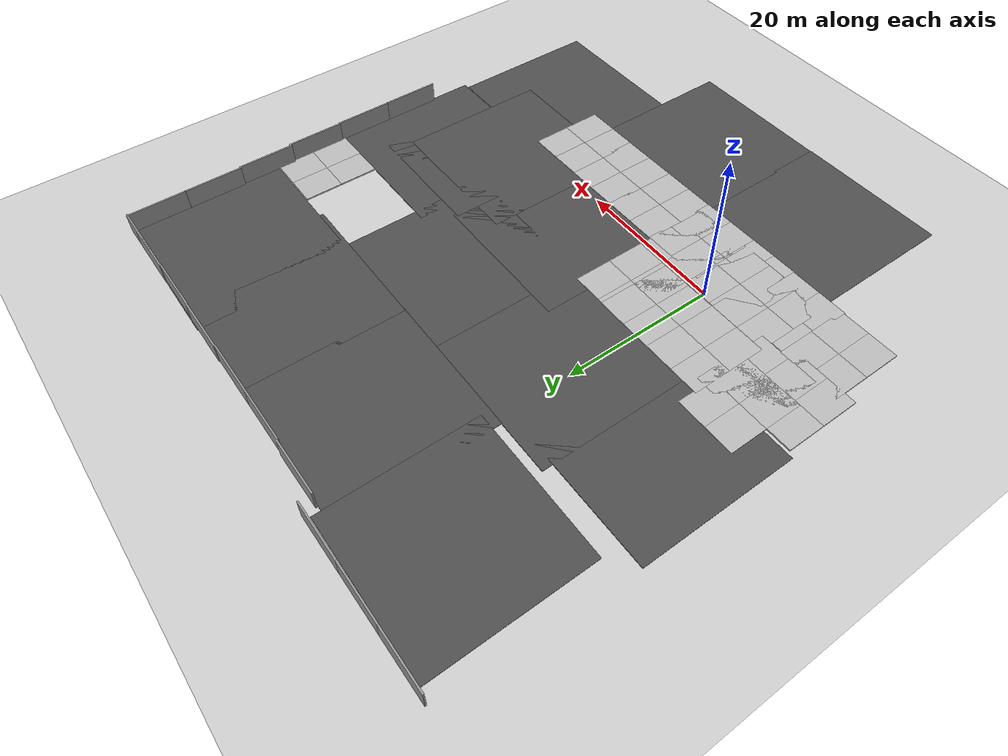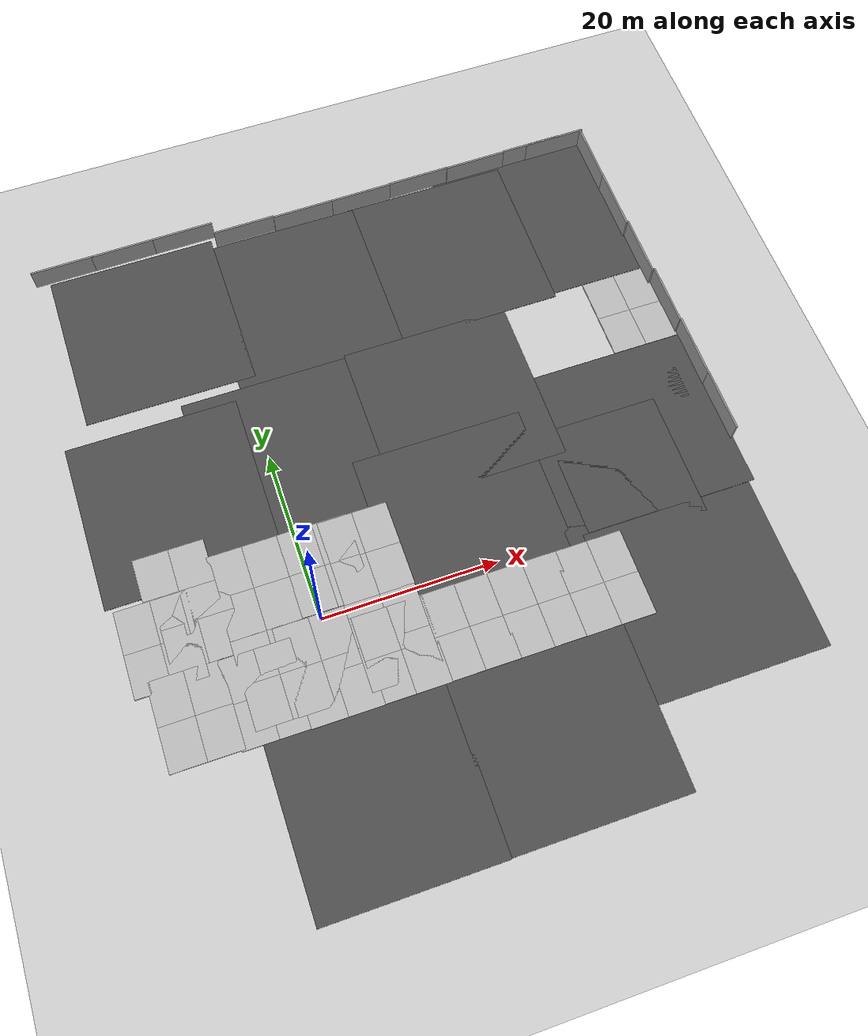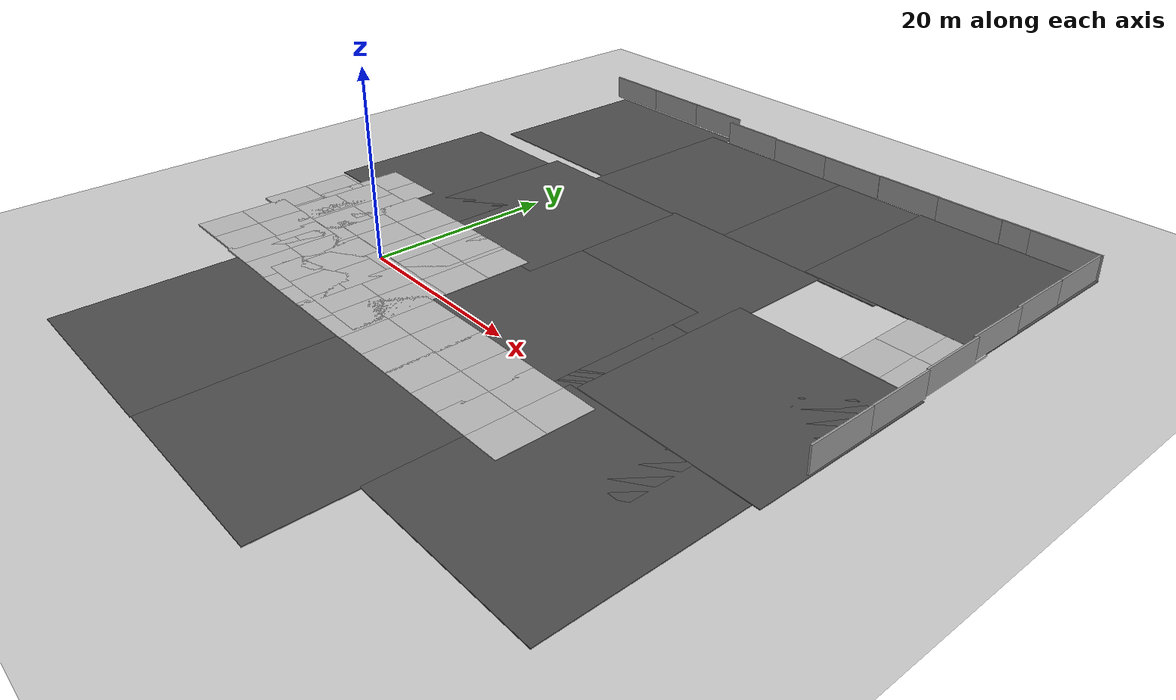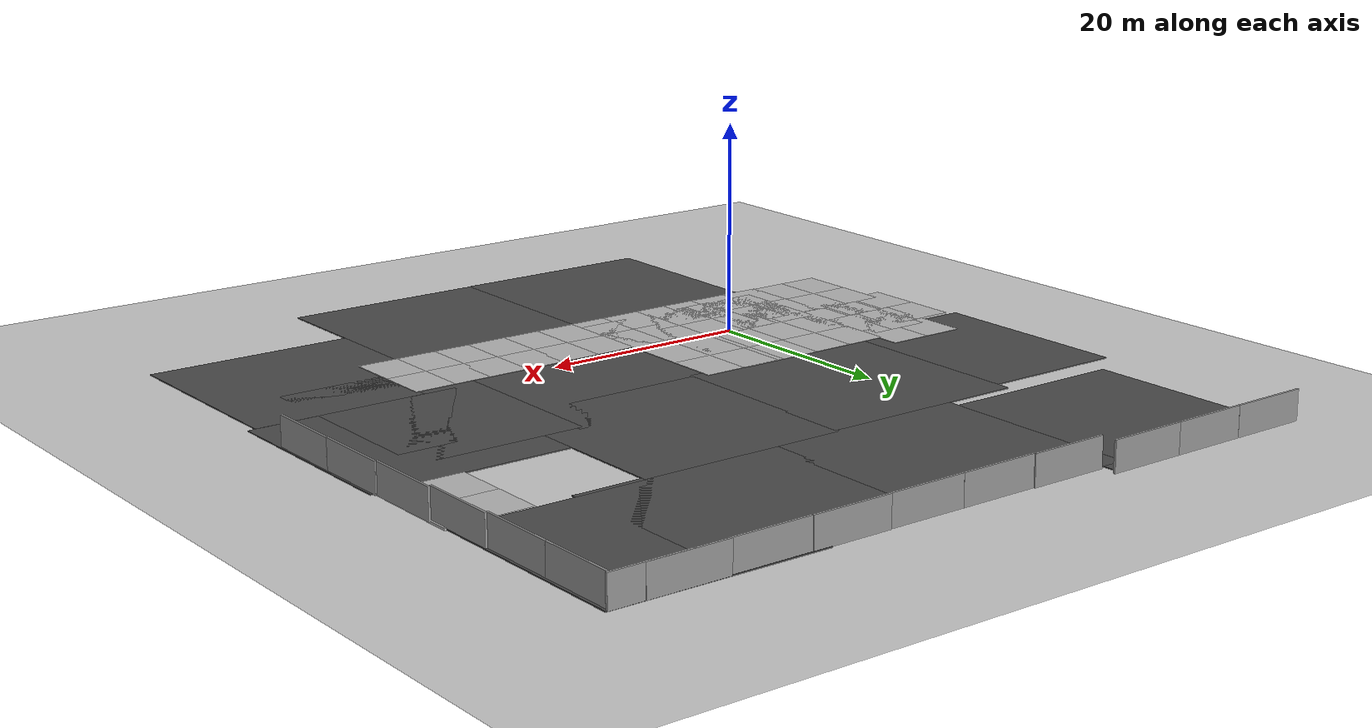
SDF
<sdf version="1.6">
 <world name="default">
  <model name="ground_plane">
   <static>1</static>
   <link name="link">
    <collision name="collision">
     <geometry><plane><normal>0 0 1</normal><size>100 100</size></plane></geometry>
     <surface><friction><ode><mu>100</mu><mu2>50</mu2></ode></friction></surface>
    </collision>
    <visual name="visual">
     <cast_shadows>0</cast_shadows>
     <geometry><plane><normal>0 0 1</normal><size>100 100</size></plane></geometry>
     <material>
      <script><uri>file://media/materials/scripts/gazebo.material</uri><name>Gazebo/Grey</name></script>
     </material>
    </visual>
   </link>
  </model>
  <model name="mud_box">
   <static>1</static>
   <link name="link">
    <collision name="collision"><geometry><box><size>8 10 0.2</size></box></geometry></collision>
    <visual name="visual_1">
     <pose>-2 2.5 0 0 -0 0</pose>
     <cast_shadows>0</cast_shadows>
     <geometry><box><size>4 5 0.2</size></box></geometry>
     <material>
      <script>
       <uri>model://mud_box/materials/scripts</uri>
       <uri>model://mud_box/materials/textures</uri>
       <name>vrc/mud</name>
      </script>
     </material>
    </visual>
    <visual name="visual_2">
     <pose>2 2.5 0 0 -0 0</pose>
     <cast_shadows>0</cast_shadows>
     <geometry><box><size>4 5 0.2</size></box></geometry>
     <material>
      <script>
       <uri>model://mud_box/materials/scripts</uri>
       <uri>model://mud_box/materials/textures</uri>
       <name>vrc/mud</name>
      </script>
     </material>
    </visual>
    <visual name="visual_3">
     <pose>2 -2.5 0 0 -0 0</pose>
     <cast_shadows>0</cast_shadows>
     <geometry><box><size>4 5 0.2</size></box></geometry>
     <material>
      <script>
       <uri>model://mud_box/materials/scripts</uri>
       <uri>model://mud_box/materials/textures</uri>
       <name>vrc/mud</name>
      </script>
     </material>
    </visual>
    <visual name="visual_4">
     <pose>-2 -2.5 0 0 -0 0</pose>
     <cast_shadows>0</cast_shadows>
     <geometry><box><size>4 5 0.2</size></box></geometry>
     <material>
      <script>
       <uri>model://mud_box/materials/scripts</uri>
       <uri>model://mud_box/materials/textures</uri>
       <name>vrc/mud</name>
      </script>
     </material>
    </visual>
   </link>
   <pose>6.67494 -4.37805 0 0 -0 0</pose>
  </model>
  <model name="mud_box_0">
   <static>1</static>
   <link name="link">
    <collision name="collision"><geometry><box><size>8 10 0.2</size></box></geometry></collision>
    <visual name="visual_1">
     <pose>-2 2.5 0 0 -0 0</pose>
     <cast_shadows>0</cast_shadows>
     <geometry><box><size>4 5 0.2</size></box></geometry>
     <material>
      <script>
       <uri>model://mud_box/materials/scripts</uri>
       <uri>model://mud_box/materials/textures</uri>
       <name>vrc/mud</name>
      </script>
     </material>
    </visual>
    <visual name="visual_2">
     <pose>2 2.5 0 0 -0 0</pose>
     <cast_shadows>0</cast_shadows>
     <geometry><box><size>4 5 0.2</size></box></geometry>
     <material>
      <script>
       <uri>model://mud_box/materials/scripts</uri>
       <uri>model://mud_box/materials/textures</uri>
       <name>vrc/mud</name>
      </script>
     </material>
    </visual>
    <visual name="visual_3">
     <pose>2 -2.5 0 0 -0 0</pose>
     <cast_shadows>0</cast_shadows>
     <geometry><box><size>4 5 0.2</size></box></geometry>
     <material>
      <script>
       <uri>model://mud_box/materials/scripts</uri>
       <uri>model://mud_box/materials/textures</uri>
       <name>vrc/mud</name>
      </script>
     </material>
    </visual>
    <visual name="visual_4">
     <pose>-2 -2.5 0 0 -0 0</pose>
     <cast_shadows>0</cast_shadows>
     <geometry><box><size>4 5 0.2</size></box></geometry>
     <material>
      <script>
       <uri>model://mud_box/materials/scripts</uri>
       <uri>model://mud_box/materials/textures</uri>
       <name>vrc/mud</name>
      </script>
     </material>
    </visual>
   </link>
   <pose>-1.31413 -4.41998 0 0 -0 0</pose>
  </model>
  <model name="mud_box_1">
   <static>1</static>
   <link name="link">
    <collision name="collision"><geometry><box><size>8 10 0.2</size></box></geometry></collision>
    <visual name="visual_1">
     <pose>-2 2.5 0 0 -0 0</pose>
     <cast_shadows>0</cast_shadows>
     <geometry><box><size>4 5 0.2</size></box></geometry>
     <material>
      <script>
       <uri>model://mud_box/materials/scripts</uri>
       <uri>model://mud_box/materials/textures</uri>
       <name>vrc/mud</name>
      </script>
     </material>
    </visual>
    <visual name="visual_2">
     <pose>2 2.5 0 0 -0 0</pose>
     <cast_shadows>0</cast_shadows>
     <geometry><box><size>4 5 0.2</size></box></geometry>
     <material>
      <script>
       <uri>model://mud_box/materials/scripts</uri>
       <uri>model://mud_box/materials/textures</uri>
       <name>vrc/mud</name>
      </script>
     </material>
    </visual>
    <visual name="visual_3">
     <pose>2 -2.5 0 0 -0 0</pose>
     <cast_shadows>0</cast_shadows>
     <geometry><box><size>4 5 0.2</size></box></geometry>
     <material>
      <script>
       <uri>model://mud_box/materials/scripts</uri>
       <uri>model://mud_box/materials/textures</uri>
       <name>vrc/mud</name>
      </script>
     </material>
    </visual>
    <visual name="visual_4">
     <pose>-2 -2.5 0 0 -0 0</pose>
     <cast_shadows>0</cast_shadows>
     <geometry><box><size>4 5 0.2</size></box></geometry>
     <material>
      <script>
       <uri>model://mud_box/materials/scripts</uri>
       <uri>model://mud_box/materials/textures</uri>
       <name>vrc/mud</name>
      </script>
     </material>
    </visual>
   </link>
   <pose>-5.88435 -4.38735 0 0 -0 0</pose>
  </model>
  <model name="mud_box_2">
   <static>1</static>
   <link name="link">
    <collision name="collision"><geometry><box><size>8 10 0.2</size></box></geometry></collision>
    <visual name="visual_1">
     <pose>-2 2.5 0 0 -0 0</pose>
     <cast_shadows>0</cast_shadows>
     <geometry><box><size>4 5 0.2</size></box></geometry>
     <material>
      <script>
       <uri>model://mud_box/materials/scripts</uri>
       <uri>model://mud_box/materials/textures</uri>
       <name>vrc/mud</name>
      </script>
     </material>
    </visual>
    <visual name="visual_2">
     <pose>2 2.5 0 0 -0 0</pose>
     <cast_shadows>0</cast_shadows>
     <geometry><box><size>4 5 0.2</size></box></geometry>
     <material>
      <script>
       <uri>model://mud_box/materials/scripts</uri>
       <uri>model://mud_box/materials/textures</uri>
       <name>vrc/mud</name>
      </script>
     </material>
    </visual>
    <visual name="visual_3">
     <pose>2 -2.5 0 0 -0 0</pose>
     <cast_shadows>0</cast_shadows>
     <geometry><box><size>4 5 0.2</size></box></geometry>
     <material>
      <script>
       <uri>model://mud_box/materials/scripts</uri>
       <uri>model://mud_box/materials/textures</uri>
       <name>vrc/mud</name>
      </script>
     </material>
    </visual>
    <visual name="visual_4">
     <pose>-2 -2.5 0 0 -0 0</pose>
     <cast_shadows>0</cast_shadows>
     <geometry><box><size>4 5 0.2</size></box></geometry>
     <material>
      <script>
       <uri>model://mud_box/materials/scripts</uri>
       <uri>model://mud_box/materials/textures</uri>
       <name>vrc/mud</name>
      </script>
     </material>
    </visual>
   </link>
   <pose>-5.85929 5.62111 0 0 -0 0</pose>
  </model>
  <model name="mud_box_3">
   <static>1</static>
   <link name="link">
    <collision name="collision"><geometry><box><size>8 10 0.2</size></box></geometry></collision>
    <visual name="visual_1">
     <pose>-2 2.5 0 0 -0 0</pose>
     <cast_shadows>0</cast_shadows>
     <geometry><box><size>4 5 0.2</size></box></geometry>
     <material>
      <script>
       <uri>model://mud_box/materials/scripts</uri>
       <uri>model://mud_box/materials/textures</uri>
       <name>vrc/mud</name>
      </script>
     </material>
    </visual>
    <visual name="visual_2">
     <pose>2 2.5 0 0 -0 0</pose>
     <cast_shadows>0</cast_shadows>
     <geometry><box><size>4 5 0.2</size></box></geometry>
     <material>
      <script>
       <uri>model://mud_box/materials/scripts</uri>
       <uri>model://mud_box/materials/textures</uri>
       <name>vrc/mud</name>
      </script>
     </material>
    </visual>
    <visual name="visual_3">
     <pose>2 -2.5 0 0 -0 0</pose>
     <cast_shadows>0</cast_shadows>
     <geometry><box><size>4 5 0.2</size></box></geometry>
     <material>
      <script>
       <uri>model://mud_box/materials/scripts</uri>
       <uri>model://mud_box/materials/textures</uri>
       <name>vrc/mud</name>
      </script>
     </material>
    </visual>
    <visual name="visual_4">
     <pose>-2 -2.5 0 0 -0 0</pose>
     <cast_shadows>0</cast_shadows>
     <geometry><box><size>4 5 0.2</size></box></geometry>
     <material>
      <script>
       <uri>model://mud_box/materials/scripts</uri>
       <uri>model://mud_box/materials/textures</uri>
       <name>vrc/mud</name>
      </script>
     </material>
    </visual>
   </link>
   <pose>2.11138 5.6492 0 0 -0 0</pose>
  </model>
  <model name="mud_box_4">
   <static>1</static>
   <link name="link">
    <collision name="collision"><geometry><box><size>8 10 0.2</size></box></geometry></collision>
    <visual name="visual_1">
     <pose>-2 2.5 0 0 -0 0</pose>
     <cast_shadows>0</cast_shadows>
     <geometry><box><size>4 5 0.2</size></box></geometry>
     <material>
      <script>
       <uri>model://mud_box/materials/scripts</uri>
       <uri>model://mud_box/materials/textures</uri>
       <name>vrc/mud</name>
      </script>
     </material>
    </visual>
    <visual name="visual_2">
     <pose>2 2.5 0 0 -0 0</pose>
     <cast_shadows>0</cast_shadows>
     <geometry><box><size>4 5 0.2</size></box></geometry>
     <material>
      <script>
       <uri>model://mud_box/materials/scripts</uri>
       <uri>model://mud_box/materials/textures</uri>
       <name>vrc/mud</name>
      </script>
     </material>
    </visual>
    <visual name="visual_3">
     <pose>2 -2.5 0 0 -0 0</pose>
     <cast_shadows>0</cast_shadows>
     <geometry><box><size>4 5 0.2</size></box></geometry>
     <material>
      <script>
       <uri>model://mud_box/materials/scripts</uri>
       <uri>model://mud_box/materials/textures</uri>
       <name>vrc/mud</name>
      </script>
     </material>
    </visual>
    <visual name="visual_4">
     <pose>-2 -2.5 0 0 -0 0</pose>
     <cast_shadows>0</cast_shadows>
     <geometry><box><size>4 5 0.2</size></box></geometry>
     <material>
      <script>
       <uri>model://mud_box/materials/scripts</uri>
       <uri>model://mud_box/materials/textures</uri>
       <name>vrc/mud</name>
      </script>
     </material>
    </visual>
   </link>
   <pose>6.7262 5.5782 0 0 -0 0</pose>
  </model>
  <model name="asphalt_plane">
   <static>1</static>
   <link name="link">
    <collision name="collision"><geometry><box><size>20 20 0.1</size></box></geometry></collision>
    <visual name="visual">
     <cast_shadows>0</cast_shadows>
     <geometry><box><size>20 20 0.1</size></box></geometry>
     <material>
      <script>
       <uri>model://asphalt_plane/materials/scripts</uri>
       <uri>model://asphalt_plane/materials/textures</uri>
       <name>vrc/asphalt</name>
      </script>
     </material>
    </visual>
   </link>
   <pose>0.46329 -19.4958 0 0 -0 0</pose>
  </model>
  <model name="asphalt_plane_1">
   <static>1</static>
   <link name="link">
    <collision name="collision"><geometry><box><size>20 20 0.1</size></box></geometry></collision>
    <visual name="visual">
     <cast_shadows>0</cast_shadows>
     <geometry><box><size>20 20 0.1</size></box></geometry>
     <material>
      <script>
       <uri>model://asphalt_plane/materials/scripts</uri>
       <uri>model://asphalt_plane/materials/textures</uri>
       <name>vrc/asphalt</name>
      </script>
     </material>
    </visual>
   </link>
   <pose>20.1586 -19.4171 0 0 -0 0</pose>
  </model>
  <model name="mud_box_2_clone_9">
   <static>1</static>
   <link name="link">
    <collision name="collision"><geometry><box><size>8 10 0.2</size></box></geometry></collision>
    <visual name="visual_1">
     <pose>-2 2.5 0 0 -0 0</pose>
     <cast_shadows>0</cast_shadows>
     <geometry><box><size>4 5 0.2</size></box></geometry>
     <material>
      <script>
       <uri>model://mud_box/materials/scripts</uri>
       <uri>model://mud_box/materials/textures</uri>
       <name>vrc/mud</name>
      </script>
     </material>
    </visual>
    <visual name="visual_2">
     <pose>2 2.5 0 0 -0 0</pose>
     <cast_shadows>0</cast_shadows>
     <geometry><box><size>4 5 0.2</size></box></geometry>
     <material>
      <script>
       <uri>model://mud_box/materials/scripts</uri>
       <uri>model://mud_box/materials/textures</uri>
       <name>vrc/mud</name>
      </script>
     </material>
    </visual>
    <visual name="visual_3">
     <pose>2 -2.5 0 0 -0 0</pose>
     <cast_shadows>0</cast_shadows>
     <geometry><box><size>4 5 0.2</size></box></geometry>
     <material>
      <script>
       <uri>model://mud_box/materials/scripts</uri>
       <uri>model://mud_box/materials/textures</uri>
       <name>vrc/mud</name>
      </script>
     </material>
    </visual>
    <visual name="visual_4">
     <pose>-2 -2.5 0 0 -0 0</pose>
     <cast_shadows>0</cast_shadows>
     <geometry><box><size>4 5 0.2</size></box></geometry>
     <material>
      <script>
       <uri>model://mud_box/materials/scripts</uri>
       <uri>model://mud_box/materials/textures</uri>
       <name>vrc/mud</name>
      </script>
     </material>
    </visual>
   </link>
   <pose>6.94055 -5.96852 0 0 -0 0</pose>
  </model>
  <model name="mud_box_2_clone_10">
   <static>1</static>
   <link name="link">
    <collision name="collision"><geometry><box><size>8 10 0.2</size></box></geometry></collision>
    <visual name="visual_1">
     <pose>-2 2.5 0 0 -0 0</pose>
     <cast_shadows>0</cast_shadows>
     <geometry><box><size>4 5 0.2</size></box></geometry>
     <material>
      <script>
       <uri>model://mud_box/materials/scripts</uri>
       <uri>model://mud_box/materials/textures</uri>
       <name>vrc/mud</name>
      </script>
     </material>
    </visual>
    <visual name="visual_2">
     <pose>2 2.5 0 0 -0 0</pose>
     <cast_shadows>0</cast_shadows>
     <geometry><box><size>4 5 0.2</size></box></geometry>
     <material>
      <script>
       <uri>model://mud_box/materials/scripts</uri>
       <uri>model://mud_box/materials/textures</uri>
       <name>vrc/mud</name>
      </script>
     </material>
    </visual>
    <visual name="visual_3">
     <pose>2 -2.5 0 0 -0 0</pose>
     <cast_shadows>0</cast_shadows>
     <geometry><box><size>4 5 0.2</size></box></geometry>
     <material>
      <script>
       <uri>model://mud_box/materials/scripts</uri>
       <uri>model://mud_box/materials/textures</uri>
       <name>vrc/mud</name>
      </script>
     </material>
    </visual>
    <visual name="visual_4">
     <pose>-2 -2.5 0 0 -0 0</pose>
     <cast_shadows>0</cast_shadows>
     <geometry><box><size>4 5 0.2</size></box></geometry>
     <material>
      <script>
       <uri>model://mud_box/materials/scripts</uri>
       <uri>model://mud_box/materials/textures</uri>
       <name>vrc/mud</name>
      </script>
     </material>
    </visual>
   </link>
   <pose>-0.426662 -6.00251 0 0 -0 0</pose>
  </model>
  <model name="mud_box_2_clone_11">
   <static>1</static>
   <link name="link">
    <collision name="collision"><geometry><box><size>8 10 0.2</size></box></geometry></collision>
    <visual name="visual_1">
     <pose>-2 2.5 0 0 -0 0</pose>
     <cast_shadows>0</cast_shadows>
     <geometry><box><size>4 5 0.2</size></box></geometry>
     <material>
      <script>
       <uri>model://mud_box/materials/scripts</uri>
       <uri>model://mud_box/materials/textures</uri>
       <name>vrc/mud</name>
      </script>
     </material>
    </visual>
    <visual name="visual_2">
     <pose>2 2.5 0 0 -0 0</pose>
     <cast_shadows>0</cast_shadows>
     <geometry><box><size>4 5 0.2</size></box></geometry>
     <material>
      <script>
       <uri>model://mud_box/materials/scripts</uri>
       <uri>model://mud_box/materials/textures</uri>
       <name>vrc/mud</name>
      </script>
     </material>
    </visual>
    <visual name="visual_3">
     <pose>2 -2.5 0 0 -0 0</pose>
     <cast_shadows>0</cast_shadows>
     <geometry><box><size>4 5 0.2</size></box></geometry>
     <material>
      <script>
       <uri>model://mud_box/materials/scripts</uri>
       <uri>model://mud_box/materials/textures</uri>
       <name>vrc/mud</name>
      </script>
     </material>
    </visual>
    <visual name="visual_4">
     <pose>-2 -2.5 0 0 -0 0</pose>
     <cast_shadows>0</cast_shadows>
     <geometry><box><size>4 5 0.2</size></box></geometry>
     <material>
      <script>
       <uri>model://mud_box/materials/scripts</uri>
       <uri>model://mud_box/materials/textures</uri>
       <name>vrc/mud</name>
      </script>
     </material>
    </visual>
   </link>
   <pose>-7.76973 -5.92616 0 0 -0 0</pose>
  </model>
  <model name="mud_box_2_clone_12">
   <static>1</static>
   <link name="link">
    <collision name="collision"><geometry><box><size>8 10 0.2</size></box></geometry></collision>
    <visual name="visual_1">
     <pose>-2 2.5 0 0 -0 0</pose>
     <cast_shadows>0</cast_shadows>
     <geometry><box><size>4 5 0.2</size></box></geometry>
     <material>
      <script>
       <uri>model://mud_box/materials/scripts</uri>
       <uri>model://mud_box/materials/textures</uri>
       <name>vrc/mud</name>
      </script>
     </material>
    </visual>
    <visual name="visual_2">
     <pose>2 2.5 0 0 -0 0</pose>
     <cast_shadows>0</cast_shadows>
     <geometry><box><size>4 5 0.2</size></box></geometry>
     <material>
      <script>
       <uri>model://mud_box/materials/scripts</uri>
       <uri>model://mud_box/materials/textures</uri>
       <name>vrc/mud</name>
      </script>
     </material>
    </visual>
    <visual name="visual_3">
     <pose>2 -2.5 0 0 -0 0</pose>
     <cast_shadows>0</cast_shadows>
     <geometry><box><size>4 5 0.2</size></box></geometry>
     <material>
      <script>
       <uri>model://mud_box/materials/scripts</uri>
       <uri>model://mud_box/materials/textures</uri>
       <name>vrc/mud</name>
      </script>
     </material>
    </visual>
    <visual name="visual_4">
     <pose>-2 -2.5 0 0 -0 0</pose>
     <cast_shadows>0</cast_shadows>
     <geometry><box><size>4 5 0.2</size></box></geometry>
     <material>
      <script>
       <uri>model://mud_box/materials/scripts</uri>
       <uri>model://mud_box/materials/textures</uri>
       <name>vrc/mud</name>
      </script>
     </material>
    </visual>
   </link>
   <pose>14.6148 -5.9147 0 0 -0 0</pose>
  </model>
  <model name="mud_box_2_clone_13">
   <static>1</static>
   <link name="link">
    <collision name="collision"><geometry><box><size>8 10 0.2</size></box></geometry></collision>
    <visual name="visual_1">
     <pose>-2 2.5 0 0 -0 0</pose>
     <cast_shadows>0</cast_shadows>
     <geometry><box><size>4 5 0.2</size></box></geometry>
     <material>
      <script>
       <uri>model://mud_box/materials/scripts</uri>
       <uri>model://mud_box/materials/textures</uri>
       <name>vrc/mud</name>
      </script>
     </material>
    </visual>
    <visual name="visual_2">
     <pose>2 2.5 0 0 -0 0</pose>
     <cast_shadows>0</cast_shadows>
     <geometry><box><size>4 5 0.2</size></box></geometry>
     <material>
      <script>
       <uri>model://mud_box/materials/scripts</uri>
       <uri>model://mud_box/materials/textures</uri>
       <name>vrc/mud</name>
      </script>
     </material>
    </visual>
    <visual name="visual_3">
     <pose>2 -2.5 0 0 -0 0</pose>
     <cast_shadows>0</cast_shadows>
     <geometry><box><size>4 5 0.2</size></box></geometry>
     <material>
      <script>
       <uri>model://mud_box/materials/scripts</uri>
       <uri>model://mud_box/materials/textures</uri>
       <name>vrc/mud</name>
      </script>
     </material>
    </visual>
    <visual name="visual_4">
     <pose>-2 -2.5 0 0 -0 0</pose>
     <cast_shadows>0</cast_shadows>
     <geometry><box><size>4 5 0.2</size></box></geometry>
     <material>
      <script>
       <uri>model://mud_box/materials/scripts</uri>
       <uri>model://mud_box/materials/textures</uri>
       <name>vrc/mud</name>
      </script>
     </material>
    </visual>
   </link>
   <pose>22.3759 -5.90953 0 0 -0 0</pose>
  </model>
  <model name="mud_box_2_clone_14">
   <static>1</static>
   <link name="link">
    <collision name="collision"><geometry><box><size>8 10 0.2</size></box></geometry></collision>
    <visual name="visual_1">
     <pose>-2 2.5 0 0 -0 0</pose>
     <cast_shadows>0</cast_shadows>
     <geometry><box><size>4 5 0.2</size></box></geometry>
     <material>
      <script>
       <uri>model://mud_box/materials/scripts</uri>
       <uri>model://mud_box/materials/textures</uri>
       <name>vrc/mud</name>
      </script>
     </material>
    </visual>
    <visual name="visual_2">
     <pose>2 2.5 0 0 -0 0</pose>
     <cast_shadows>0</cast_shadows>
     <geometry><box><size>4 5 0.2</size></box></geometry>
     <material>
      <script>
       <uri>model://mud_box/materials/scripts</uri>
       <uri>model://mud_box/materials/textures</uri>
       <name>vrc/mud</name>
      </script>
     </material>
    </visual>
    <visual name="visual_3">
     <pose>2 -2.5 0 0 -0 0</pose>
     <cast_shadows>0</cast_shadows>
     <geometry><box><size>4 5 0.2</size></box></geometry>
     <material>
      <script>
       <uri>model://mud_box/materials/scripts</uri>
       <uri>model://mud_box/materials/textures</uri>
       <name>vrc/mud</name>
      </script>
     </material>
    </visual>
    <visual name="visual_4">
     <pose>-2 -2.5 0 0 -0 0</pose>
     <cast_shadows>0</cast_shadows>
     <geometry><box><size>4 5 0.2</size></box></geometry>
     <material>
      <script>
       <uri>model://mud_box/materials/scripts</uri>
       <uri>model://mud_box/materials/textures</uri>
       <name>vrc/mud</name>
      </script>
     </material>
    </visual>
   </link>
   <pose>29.9864 -5.92338 0 0 -0 0</pose>
  </model>
  <model name="mud_box_2_clone_15">
   <static>1</static>
   <link name="link">
    <collision name="collision"><geometry><box><size>8 10 0.2</size></box></geometry></collision>
    <visual name="visual_1">
     <pose>-2 2.5 0 0 -0 0</pose>
     <cast_shadows>0</cast_shadows>
     <geometry><box><size>4 5 0.2</size></box></geometry>
     <material>
      <script>
       <uri>model://mud_box/materials/scripts</uri>
       <uri>model://mud_box/materials/textures</uri>
       <name>vrc/mud</name>
      </script>
     </material>
    </visual>
    <visual name="visual_2">
     <pose>2 2.5 0 0 -0 0</pose>
     <cast_shadows>0</cast_shadows>
     <geometry><box><size>4 5 0.2</size></box></geometry>
     <material>
      <script>
       <uri>model://mud_box/materials/scripts</uri>
       <uri>model://mud_box/materials/textures</uri>
       <name>vrc/mud</name>
      </script>
     </material>
    </visual>
    <visual name="visual_3">
     <pose>2 -2.5 0 0 -0 0</pose>
     <cast_shadows>0</cast_shadows>
     <geometry><box><size>4 5 0.2</size></box></geometry>
     <material>
      <script>
       <uri>model://mud_box/materials/scripts</uri>
       <uri>model://mud_box/materials/textures</uri>
       <name>vrc/mud</name>
      </script>
     </material>
    </visual>
    <visual name="visual_4">
     <pose>-2 -2.5 0 0 -0 0</pose>
     <cast_shadows>0</cast_shadows>
     <geometry><box><size>4 5 0.2</size></box></geometry>
     <material>
      <script>
       <uri>model://mud_box/materials/scripts</uri>
       <uri>model://mud_box/materials/textures</uri>
       <name>vrc/mud</name>
      </script>
     </material>
    </visual>
   </link>
   <pose>-15.3121 -5.76558 0 0 -0 0</pose>
  </model>
  <model name="asphalt_plane_1_clone_0">
   <static>1</static>
   <link name="link">
    <collision name="collision"><geometry><box><size>20 20 0.1</size></box></geometry></collision>
    <visual name="visual">
     <cast_shadows>0</cast_shadows>
     <geometry><box><size>20 20 0.1</size></box></geometry>
     <material>
      <script>
       <uri>model://asphalt_plane/materials/scripts</uri>
       <uri>model://asphalt_plane/materials/textures</uri>
       <name>vrc/asphalt</name>
      </script>
     </material>
    </visual>
   </link>
   <pose>39.9143 -10.1366 0 0 -0 0</pose>
  </model>
  <model name="mud_box_5_clone_4_clone">
   <static>1</static>
   <link name="link">
    <collision name="collision"><geometry><box><size>8 10 0.2</size></box></geometry></collision>
    <visual name="visual_1">
     <pose>-2 2.5 0 0 -0 0</pose>
     <cast_shadows>0</cast_shadows>
     <geometry><box><size>4 5 0.2</size></box></geometry>
     <material>
      <script>
       <uri>model://mud_box/materials/scripts</uri>
       <uri>model://mud_box/materials/textures</uri>
       <name>vrc/mud</name>
      </script>
     </material>
    </visual>
    <visual name="visual_2">
     <pose>2 2.5 0 0 -0 0</pose>
     <cast_shadows>0</cast_shadows>
     <geometry><box><size>4 5 0.2</size></box></geometry>
     <material>
      <script>
       <uri>model://mud_box/materials/scripts</uri>
       <uri>model://mud_box/materials/textures</uri>
       <name>vrc/mud</name>
      </script>
     </material>
    </visual>
    <visual name="visual_3">
     <pose>2 -2.5 0 0 -0 0</pose>
     <cast_shadows>0</cast_shadows>
     <geometry><box><size>4 5 0.2</size></box></geometry>
     <material>
      <script>
       <uri>model://mud_box/materials/scripts</uri>
       <uri>model://mud_box/materials/textures</uri>
       <name>vrc/mud</name>
      </script>
     </material>
    </visual>
    <visual name="visual_4">
     <pose>-2 -2.5 0 0 -0 0</pose>
     <cast_shadows>0</cast_shadows>
     <geometry><box><size>4 5 0.2</size></box></geometry>
     <material>
      <script>
       <uri>model://mud_box/materials/scripts</uri>
       <uri>model://mud_box/materials/textures</uri>
       <name>vrc/mud</name>
      </script>
     </material>
    </visual>
   </link>
   <pose>-16.8392 2.7749 0 0 -0 0</pose>
  </model>
  <model name="mud_box_5_clone_4_clone_0">
   <static>1</static>
   <link name="link">
    <collision name="collision"><geometry><box><size>8 10 0.2</size></box></geometry></collision>
    <visual name="visual_1">
     <pose>-2 2.5 0 0 -0 0</pose>
     <cast_shadows>0</cast_shadows>
     <geometry><box><size>4 5 0.2</size></box></geometry>
     <material>
      <script>
       <uri>model://mud_box/materials/scripts</uri>
       <uri>model://mud_box/materials/textures</uri>
       <name>vrc/mud</name>
      </script>
     </material>
    </visual>
    <visual name="visual_2">
     <pose>2 2.5 0 0 -0 0</pose>
     <cast_shadows>0</cast_shadows>
     <geometry><box><size>4 5 0.2</size></box></geometry>
     <material>
      <script>
       <uri>model://mud_box/materials/scripts</uri>
       <uri>model://mud_box/materials/textures</uri>
       <name>vrc/mud</name>
      </script>
     </material>
    </visual>
    <visual name="visual_3">
     <pose>2 -2.5 0 0 -0 0</pose>
     <cast_shadows>0</cast_shadows>
     <geometry><box><size>4 5 0.2</size></box></geometry>
     <material>
      <script>
       <uri>model://mud_box/materials/scripts</uri>
       <uri>model://mud_box/materials/textures</uri>
       <name>vrc/mud</name>
      </script>
     </material>
    </visual>
    <visual name="visual_4">
     <pose>-2 -2.5 0 0 -0 0</pose>
     <cast_shadows>0</cast_shadows>
     <geometry><box><size>4 5 0.2</size></box></geometry>
     <material>
      <script>
       <uri>model://mud_box/materials/scripts</uri>
       <uri>model://mud_box/materials/textures</uri>
       <name>vrc/mud</name>
      </script>
     </material>
    </visual>
   </link>
   <pose>-12.4812 4.1478 0 0 -0 0</pose>
  </model>
  <model name="mud_box_5_clone_4_clone_1">
   <static>1</static>
   <link name="link">
    <collision name="collision"><geometry><box><size>8 10 0.2</size></box></geometry></collision>
    <visual name="visual_1">
     <pose>-2 2.5 0 0 -0 0</pose>
     <cast_shadows>0</cast_shadows>
     <geometry><box><size>4 5 0.2</size></box></geometry>
     <material>
      <script>
       <uri>model://mud_box/materials/scripts</uri>
       <uri>model://mud_box/materials/textures</uri>
       <name>vrc/mud</name>
      </script>
     </material>
    </visual>
    <visual name="visual_2">
     <pose>2 2.5 0 0 -0 0</pose>
     <cast_shadows>0</cast_shadows>
     <geometry><box><size>4 5 0.2</size></box></geometry>
     <material>
      <script>
       <uri>model://mud_box/materials/scripts</uri>
       <uri>model://mud_box/materials/textures</uri>
       <name>vrc/mud</name>
      </script>
     </material>
    </visual>
    <visual name="visual_3">
     <pose>2 -2.5 0 0 -0 0</pose>
     <cast_shadows>0</cast_shadows>
     <geometry><box><size>4 5 0.2</size></box></geometry>
     <material>
      <script>
       <uri>model://mud_box/materials/scripts</uri>
       <uri>model://mud_box/materials/textures</uri>
       <name>vrc/mud</name>
      </script>
     </material>
    </visual>
    <visual name="visual_4">
     <pose>-2 -2.5 0 0 -0 0</pose>
     <cast_shadows>0</cast_shadows>
     <geometry><box><size>4 5 0.2</size></box></geometry>
     <material>
      <script>
       <uri>model://mud_box/materials/scripts</uri>
       <uri>model://mud_box/materials/textures</uri>
       <name>vrc/mud</name>
      </script>
     </material>
    </visual>
   </link>
   <pose>-13.5644 7.84833 0 0 -0 0</pose>
  </model>
  <model name="asphalt_plane_0_clone_2">
   <static>1</static>
   <link name="link">
    <collision name="collision"><geometry><box><size>20 20 0.1</size></box></geometry></collision>
    <visual name="visual">
     <cast_shadows>0</cast_shadows>
     <geometry><box><size>20 20 0.1</size></box></geometry>
     <material>
      <script>
       <uri>model://asphalt_plane/materials/scripts</uri>
       <uri>model://asphalt_plane/materials/textures</uri>
       <name>vrc/asphalt</name>
      </script>
     </material>
    </visual>
   </link>
   <pose>-11.6269 18.234 0 0 -0 0</pose>
  </model>
  <model name="asphalt_plane_0_clone_3">
   <static>1</static>
   <link name="link">
    <collision name="collision"><geometry><box><size>20 20 0.1</size></box></geometry></collision>
    <visual name="visual">
     <cast_shadows>0</cast_shadows>
     <geometry><box><size>20 20 0.1</size></box></geometry>
     <material>
      <script>
       <uri>model://asphalt_plane/materials/scripts</uri>
       <uri>model://asphalt_plane/materials/textures</uri>
       <name>vrc/asphalt</name>
      </script>
     </material>
    </visual>
   </link>
   <pose>2.20357 19.5755 0 0 -0 0</pose>
  </model>
  <model name="asphalt_plane_0_clone_4">
   <static>1</static>
   <link name="link">
    <collision name="collision"><geometry><box><size>20 20 0.1</size></box></geometry></collision>
    <visual name="visual">
     <cast_shadows>0</cast_shadows>
     <geometry><box><size>20 20 0.1</size></box></geometry>
     <material>
      <script>
       <uri>model://asphalt_plane/materials/scripts</uri>
       <uri>model://asphalt_plane/materials/textures</uri>
       <name>vrc/asphalt</name>
      </script>
     </material>
    </visual>
   </link>
   <pose>9.27005 39.504 0 0 -0 0</pose>
  </model>
  <model name="asphalt_plane_0_clone_4_clone">
   <static>1</static>
   <link name="link">
    <collision name="collision"><geometry><box><size>20 20 0.1</size></box></geometry></collision>
    <visual name="visual">
     <cast_shadows>0</cast_shadows>
     <geometry><box><size>20 20 0.1</size></box></geometry>
     <material>
      <script>
       <uri>model://asphalt_plane/materials/scripts</uri>
       <uri>model://asphalt_plane/materials/textures</uri>
       <name>vrc/asphalt</name>
      </script>
     </material>
    </visual>
   </link>
   <pose>-8.55929 40.6597 0 0 -0 0</pose>
  </model>
  <model name="asphalt_plane_0_clone_4_clone_0">
   <static>1</static>
   <link name="link">
    <collision name="collision"><geometry><box><size>20 20 0.1</size></box></geometry></collision>
    <visual name="visual">
     <cast_shadows>0</cast_shadows>
     <geometry><box><size>20 20 0.1</size></box></geometry>
     <material>
      <script>
       <uri>model://asphalt_plane/materials/scripts</uri>
       <uri>model://asphalt_plane/materials/textures</uri>
       <name>vrc/asphalt</name>
      </script>
     </material>
    </visual>
   </link>
   <pose>28.6064 39.5385 0 0 -0 0</pose>
  </model>
  <model name="asphalt_plane_0_clone_4_clone_1">
   <static>1</static>
   <link name="link">
    <collision name="collision"><geometry><box><size>20 20 0.1</size></box></geometry></collision>
    <visual name="visual">
     <cast_shadows>0</cast_shadows>
     <geometry><box><size>20 20 0.1</size></box></geometry>
     <material>
      <script>
       <uri>model://asphalt_plane/materials/scripts</uri>
       <uri>model://asphalt_plane/materials/textures</uri>
       <name>vrc/asphalt</name>
      </script>
     </material>
    </visual>
   </link>
   <pose>40.0482 40.0268 0 0 -0 0</pose>
  </model>
  <model name="asphalt_plane_0_clone_4_clone_2">
   <static>1</static>
   <link name="link">
    <collision name="collision"><geometry><box><size>20 20 0.1</size></box></geometry></collision>
    <visual name="visual">
     <cast_shadows>0</cast_shadows>
     <geometry><box><size>20 20 0.1</size></box></geometry>
     <material>
      <script>
       <uri>model://asphalt_plane/materials/scripts</uri>
       <uri>model://asphalt_plane/materials/textures</uri>
       <name>vrc/asphalt</name>
      </script>
     </material>
    </visual>
   </link>
   <pose>21.9794 19.9105 0 0 -0 0</pose>
  </model>
  <model name="asphalt_plane_0_clone_4_clone_3">
   <static>1</static>
   <link name="link">
    <collision name="collision"><geometry><box><size>20 20 0.1</size></box></geometry></collision>
    <visual name="visual">
     <cast_shadows>0</cast_shadows>
     <geometry><box><size>20 20 0.1</size></box></geometry>
     <material>
      <script>
       <uri>model://asphalt_plane/materials/scripts</uri>
       <uri>model://asphalt_plane/materials/textures</uri>
       <name>vrc/asphalt</name>
      </script>
     </material>
    </visual>
   </link>
   <pose>18.686 6.3636 0 0 -0 0</pose>
  </model>
  <model name="asphalt_plane_0_clone_4_clone_4">
   <static>1</static>
   <link name="link">
    <collision name="collision"><geometry><box><size>20 20 0.1</size></box></geometry></collision>
    <visual name="visual">
     <cast_shadows>0</cast_shadows>
     <geometry><box><size>20 20 0.1</size></box></geometry>
     <material>
      <script>
       <uri>model://asphalt_plane/materials/scripts</uri>
       <uri>model://asphalt_plane/materials/textures</uri>
       <name>vrc/asphalt</name>
      </script>
     </material>
    </visual>
   </link>
   <pose>38.1312 5.99691 0 0 -0 0</pose>
  </model>
  <model name="asphalt_plane_0_clone_4_clone_5">
   <static>1</static>
   <link name="link">
    <collision name="collision"><geometry><box><size>20 20 0.1</size></box></geometry></collision>
    <visual name="visual">
     <cast_shadows>0</cast_shadows>
     <geometry><box><size>20 20 0.1</size></box></geometry>
     <material>
      <script>
       <uri>model://asphalt_plane/materials/scripts</uri>
       <uri>model://asphalt_plane/materials/textures</uri>
       <name>vrc/asphalt</name>
      </script>
     </material>
    </visual>
   </link>
   <pose>40.6309 9.91782 0 0 -0 0</pose>
  </model>
  <model name="asphalt_plane_0_clone_4_clone_6">
   <static>1</static>
   <link name="link">
    <collision name="collision"><geometry><box><size>20 20 0.1</size></box></geometry></collision>
    <visual name="visual">
     <cast_shadows>0</cast_shadows>
     <geometry><box><size>20 20 0.1</size></box></geometry>
     <material>
      <script>
       <uri>model://asphalt_plane/materials/scripts</uri>
       <uri>model://asphalt_plane/materials/textures</uri>
       <name>vrc/asphalt</name>
      </script>
     </material>
    </visual>
   </link>
   <pose>34.0471 2.97817 0 0 -0 0</pose>
  </model>
  <model name="mud_box_2_clone_14_clone">
   <static>1</static>
   <link name="link">
    <collision name="collision"><geometry><box><size>8 10 0.2</size></box></geometry></collision>
    <visual name="visual_1">
     <pose>-2 2.5 0 0 -0 0</pose>
     <cast_shadows>0</cast_shadows>
     <geometry><box><size>4 5 0.2</size></box></geometry>
     <material>
      <script>
       <uri>model://mud_box/materials/scripts</uri>
       <uri>model://mud_box/materials/textures</uri>
       <name>vrc/mud</name>
      </script>
     </material>
    </visual>
    <visual name="visual_2">
     <pose>2 2.5 0 0 -0 0</pose>
     <cast_shadows>0</cast_shadows>
     <geometry><box><size>4 5 0.2</size></box></geometry>
     <material>
      <script>
       <uri>model://mud_box/materials/scripts</uri>
       <uri>model://mud_box/materials/textures</uri>
       <name>vrc/mud</name>
      </script>
     </material>
    </visual>
    <visual name="visual_3">
     <pose>2 -2.5 0 0 -0 0</pose>
     <cast_shadows>0</cast_shadows>
     <geometry><box><size>4 5 0.2</size></box></geometry>
     <material>
      <script>
       <uri>model://mud_box/materials/scripts</uri>
       <uri>model://mud_box/materials/textures</uri>
       <name>vrc/mud</name>
      </script>
     </material>
    </visual>
    <visual name="visual_4">
     <pose>-2 -2.5 0 0 -0 0</pose>
     <cast_shadows>0</cast_shadows>
     <geometry><box><size>4 5 0.2</size></box></geometry>
     <material>
      <script>
       <uri>model://mud_box/materials/scripts</uri>
       <uri>model://mud_box/materials/textures</uri>
       <name>vrc/mud</name>
      </script>
     </material>
    </visual>
   </link>
   <pose>46.1929 24.9326 0 0 -0 0</pose>
  </model>
  <model name="grey_wall_clone_1_clone_4_clone_clone_0_clone_9_clone_2">
   <static>1</static>
   <link name="link">
    <pose>0 0 1.4 0 -0 0</pose>
    <collision name="collision"><geometry><box><size>7.5 0.2 2.8</size></box></geometry></collision>
    <visual name="visual">
     <cast_shadows>0</cast_shadows>
     <geometry><box><size>7.5 0.2 2.8</size></box></geometry>
     <material>
      <script>
       <uri>model://grey_wall/materials/scripts</uri>
       <uri>model://grey_wall/materials/textures</uri>
       <name>vrc/grey_wall</name>
      </script>
     </material>
    </visual>
   </link>
   <pose>-16.4116 51.0507 0 0 0 -3.13391</pose>
  </model>
  <model name="grey_wall_clone_1_clone_4_clone_clone_0_clone_9_clone_3">
   <static>1</static>
   <link name="link">
    <pose>0 0 1.4 0 -0 0</pose>
    <collision name="collision"><geometry><box><size>7.5 0.2 2.8</size></box></geometry></collision>
    <visual name="visual">
     <cast_shadows>0</cast_shadows>
     <geometry><box><size>7.5 0.2 2.8</size></box></geometry>
     <material>
      <script>
       <uri>model://grey_wall/materials/scripts</uri>
       <uri>model://grey_wall/materials/textures</uri>
       <name>vrc/grey_wall</name>
      </script>
     </material>
    </visual>
   </link>
   <pose>-9.07428 51.1 0 0 0 -3.13391</pose>
  </model>
  <model name="grey_wall_clone_1_clone_4_clone_clone_0_clone_9_clone_4">
   <static>1</static>
   <link name="link">
    <pose>0 0 1.4 0 -0 0</pose>
    <collision name="collision"><geometry><box><size>7.5 0.2 2.8</size></box></geometry></collision>
    <visual name="visual">
     <cast_shadows>0</cast_shadows>
     <geometry><box><size>7.5 0.2 2.8</size></box></geometry>
     <material>
      <script>
       <uri>model://grey_wall/materials/scripts</uri>
       <uri>model://grey_wall/materials/textures</uri>
       <name>vrc/grey_wall</name>
      </script>
     </material>
    </visual>
   </link>
   <pose>-1.67118 51.1607 0 0 0 -3.13391</pose>
  </model>
  <model name="grey_wall_clone_1_clone_4_clone_clone_0_clone_9_clone_5">
   <static>1</static>
   <link name="link">
    <pose>0 0 1.4 0 -0 0</pose>
    <collision name="collision"><geometry><box><size>7.5 0.2 2.8</size></box></geometry></collision>
    <visual name="visual">
     <cast_shadows>0</cast_shadows>
     <geometry><box><size>7.5 0.2 2.8</size></box></geometry>
     <material>
      <script>
       <uri>model://grey_wall/materials/scripts</uri>
       <uri>model://grey_wall/materials/textures</uri>
       <name>vrc/grey_wall</name>
      </script>
     </material>
    </visual>
   </link>
   <pose>5.69636 49.7179 0 0 0 -3.13391</pose>
  </model>
  <model name="grey_wall_clone_1_clone_4_clone_clone_0_clone_9_clone_6">
   <static>1</static>
   <link name="link">
    <pose>0 0 1.4 0 -0 0</pose>
    <collision name="collision"><geometry><box><size>7.5 0.2 2.8</size></box></geometry></collision>
    <visual name="visual">
     <cast_shadows>0</cast_shadows>
     <geometry><box><size>7.5 0.2 2.8</size></box></geometry>
     <material>
      <script>
       <uri>model://grey_wall/materials/scripts</uri>
       <uri>model://grey_wall/materials/textures</uri>
       <name>vrc/grey_wall</name>
      </script>
     </material>
    </visual>
   </link>
   <pose>13.1513 49.6467 0 0 0 -3.13391</pose>
  </model>
  <model name="grey_wall_clone_1_clone_4_clone_clone_0_clone_9_clone_7">
   <static>1</static>
   <link name="link">
    <pose>0 0 1.4 0 -0 0</pose>
    <collision name="collision"><geometry><box><size>7.5 0.2 2.8</size></box></geometry></collision>
    <visual name="visual">
     <cast_shadows>0</cast_shadows>
     <geometry><box><size>7.5 0.2 2.8</size></box></geometry>
     <material>
      <script>
       <uri>model://grey_wall/materials/scripts</uri>
       <uri>model://grey_wall/materials/textures</uri>
       <name>vrc/grey_wall</name>
      </script>
     </material>
    </visual>
   </link>
   <pose>20.5806 49.6966 0 0 0 -3.13391</pose>
  </model>
  <model name="grey_wall_clone_1_clone_4_clone_clone_0_clone_9_clone_8">
   <static>1</static>
   <link name="link">
    <pose>0 0 1.4 0 -0 0</pose>
    <collision name="collision"><geometry><box><size>7.5 0.2 2.8</size></box></geometry></collision>
    <visual name="visual">
     <cast_shadows>0</cast_shadows>
     <geometry><box><size>7.5 0.2 2.8</size></box></geometry>
     <material>
      <script>
       <uri>model://grey_wall/materials/scripts</uri>
       <uri>model://grey_wall/materials/textures</uri>
       <name>vrc/grey_wall</name>
      </script>
     </material>
    </visual>
   </link>
   <pose>28.0411 49.8317 0 0 0 -3.13391</pose>
  </model>
  <model name="grey_wall_clone_1_clone_4_clone_clone_0_clone_9_clone_9">
   <static>1</static>
   <link name="link">
    <pose>0 0 1.4 0 -0 0</pose>
    <collision name="collision"><geometry><box><size>7.5 0.2 2.8</size></box></geometry></collision>
    <visual name="visual">
     <cast_shadows>0</cast_shadows>
     <geometry><box><size>7.5 0.2 2.8</size></box></geometry>
     <material>
      <script>
       <uri>model://grey_wall/materials/scripts</uri>
       <uri>model://grey_wall/materials/textures</uri>
       <name>vrc/grey_wall</name>
      </script>
     </material>
    </visual>
   </link>
   <pose>35.5701 49.8446 0 0 0 -3.13391</pose>
  </model>
  <model name="grey_wall_clone_1_clone_4_clone_clone_0_clone_9_clone_10">
   <static>1</static>
   <link name="link">
    <pose>0 0 1.4 0 -0 0</pose>
    <collision name="collision"><geometry><box><size>7.5 0.2 2.8</size></box></geometry></collision>
    <visual name="visual">
     <cast_shadows>0</cast_shadows>
     <geometry><box><size>7.5 0.2 2.8</size></box></geometry>
     <material>
      <script>
       <uri>model://grey_wall/materials/scripts</uri>
       <uri>model://grey_wall/materials/textures</uri>
       <name>vrc/grey_wall</name>
      </script>
     </material>
    </visual>
   </link>
   <pose>42.9646 49.979 0 0 0 -3.13391</pose>
  </model>
  <model name="grey_wall_clone_1_clone_4_clone_clone_0_clone_9_clone_11">
   <static>1</static>
   <link name="link">
    <pose>0 0 1.4 0 -0 0</pose>
    <collision name="collision"><geometry><box><size>7.5 0.2 2.8</size></box></geometry></collision>
    <visual name="visual">
     <cast_shadows>0</cast_shadows>
     <geometry><box><size>7.5 0.2 2.8</size></box></geometry>
     <material>
      <script>
       <uri>model://grey_wall/materials/scripts</uri>
       <uri>model://grey_wall/materials/textures</uri>
       <name>vrc/grey_wall</name>
      </script>
     </material>
    </visual>
   </link>
   <pose>46.2012 49.9749 0 0 0 -3.13391</pose>
  </model>
  <model name="grey_wall_clone_1_clone_4_clone_clone_0_clone_6_clone">
   <static>1</static>
   <link name="link">
    <pose>0 0 1.4 0 -0 0</pose>
    <collision name="collision"><geometry><box><size>7.5 0.2 2.8</size></box></geometry></collision>
    <visual name="visual">
     <cast_shadows>0</cast_shadows>
     <geometry><box><size>7.5 0.2 2.8</size></box></geometry>
     <material>
      <script>
       <uri>model://grey_wall/materials/scripts</uri>
       <uri>model://grey_wall/materials/textures</uri>
       <name>vrc/grey_wall</name>
      </script>
     </material>
    </visual>
   </link>
   <pose>49.7002 46.272 0 0 0 -1.56928</pose>
  </model>
  <model name="grey_wall_clone_1_clone_4_clone_clone_0_clone_6_clone_0">
   <static>1</static>
   <link name="link">
    <pose>0 0 1.4 0 -0 0</pose>
    <collision name="collision"><geometry><box><size>7.5 0.2 2.8</size></box></geometry></collision>
    <visual name="visual">
     <cast_shadows>0</cast_shadows>
     <geometry><box><size>7.5 0.2 2.8</size></box></geometry>
     <material>
      <script>
       <uri>model://grey_wall/materials/scripts</uri>
       <uri>model://grey_wall/materials/textures</uri>
       <name>vrc/grey_wall</name>
      </script>
     </material>
    </visual>
   </link>
   <pose>49.7152 38.7577 0 0 0 -1.56928</pose>
  </model>
  <model name="grey_wall_clone_1_clone_4_clone_clone_0_clone_6_clone_1">
   <static>1</static>
   <link name="link">
    <pose>0 0 1.4 0 -0 0</pose>
    <collision name="collision"><geometry><box><size>7.5 0.2 2.8</size></box></geometry></collision>
    <visual name="visual">
     <cast_shadows>0</cast_shadows>
     <geometry><box><size>7.5 0.2 2.8</size></box></geometry>
     <material>
      <script>
       <uri>model://grey_wall/materials/scripts</uri>
       <uri>model://grey_wall/materials/textures</uri>
       <name>vrc/grey_wall</name>
      </script>
     </material>
    </visual>
   </link>
   <pose>49.915 31.4222 0 0 0 -1.56928</pose>
  </model>
  <model name="grey_wall_clone_1_clone_4_clone_clone_0_clone_6_clone_2">
   <static>1</static>
   <link name="link">
    <pose>0 0 1.4 0 -0 0</pose>
    <collision name="collision"><geometry><box><size>7.5 0.2 2.8</size></box></geometry></collision>
    <visual name="visual">
     <cast_shadows>0</cast_shadows>
     <geometry><box><size>7.5 0.2 2.8</size></box></geometry>
     <material>
      <script>
       <uri>model://grey_wall/materials/scripts</uri>
       <uri>model://grey_wall/materials/textures</uri>
       <name>vrc/grey_wall</name>
      </script>
     </material>
    </visual>
   </link>
   <pose>50.1927 24.1217 0 0 0 -1.56928</pose>
  </model>
  <model name="grey_wall_clone_1_clone_4_clone_clone_0_clone_6_clone_3">
   <static>1</static>
   <link name="link">
    <pose>0 0 1.4 0 -0 0</pose>
    <collision name="collision"><geometry><box><size>7.5 0.2 2.8</size></box></geometry></collision>
    <visual name="visual">
     <cast_shadows>0</cast_shadows>
     <geometry><box><size>7.5 0.2 2.8</size></box></geometry>
     <material>
      <script>
       <uri>model://grey_wall/materials/scripts</uri>
       <uri>model://grey_wall/materials/textures</uri>
       <name>vrc/grey_wall</name>
      </script>
     </material>
    </visual>
   </link>
   <pose>50.3361 16.649 0 0 0 -1.56928</pose>
  </model>
  <model name="grey_wall_clone_1_clone_4_clone_clone_0_clone_6_clone_4">
   <static>1</static>
   <link name="link">
    <pose>0 0 1.4 0 -0 0</pose>
    <collision name="collision"><geometry><box><size>7.5 0.2 2.8</size></box></geometry></collision>
    <visual name="visual">
     <cast_shadows>0</cast_shadows>
     <geometry><box><size>7.5 0.2 2.8</size></box></geometry>
     <material>
      <script>
       <uri>model://grey_wall/materials/scripts</uri>
       <uri>model://grey_wall/materials/textures</uri>
       <name>vrc/grey_wall</name>
      </script>
     </material>
    </visual>
   </link>
   <pose>50.3844 9.19689 0 0 0 -1.56928</pose>
  </model>
 </world>
</sdf>
